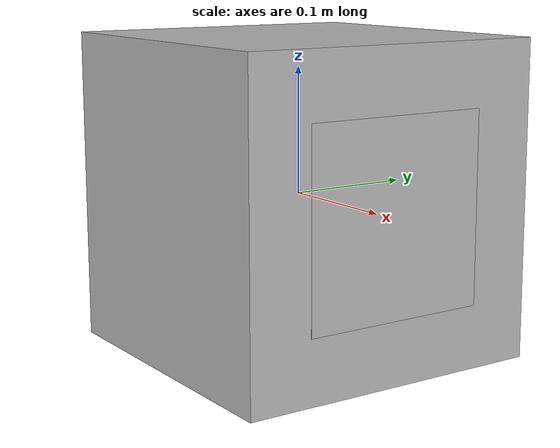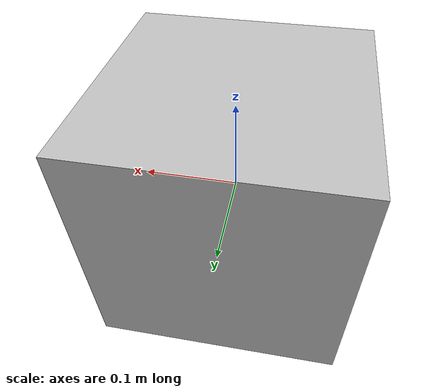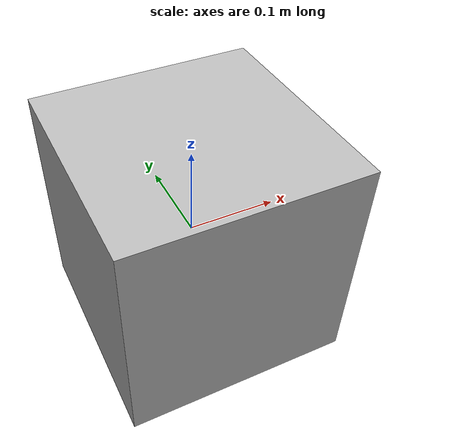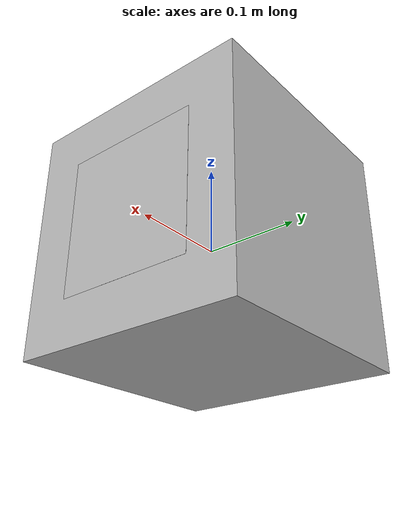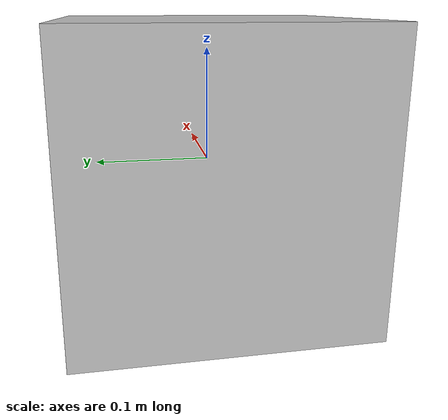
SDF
<?xml version='1.0'?>
<sdf version='1.6'>
<model name="box_model_100">
    <pose>0 0 0 0 0 0</pose>
    <static>false</static>
    <link name="link_100">

      <collision name="collision_100">
        <geometry>
          <box>
            <size>0.25 0.25 0.25</size>
          </box>
        </geometry>
      </collision>

      <visual name="visual_100">
        <geometry>
          <box>
            <size>0.25 0.25 0.25</size>
          </box>
        </geometry>
      </visual>

        <collision name='aruco_collision_100'>
        <pose>0 0 0 0 0 0</pose>
            <geometry>
                <box>
                    <size>0.0001 0.15 0.15</size>
                </box>
            </geometry>
        </collision>
        <visual name='aruco_visual_100'>
        <pose>0.125 0 0 0 0 0</pose>
            <geometry>
                <box>
                    <size>0.0001 0.15 0.15</size>
                </box>
            </geometry>
            <material>
	    <script>
            	<uri>model://aruco_marker_100/materials/scripts</uri>
            	<uri>model://aruco_marker_100/materials/textures</uri>
            	<name>Marker_100</name>
	    </script>
            </material>
        </visual>
    </link>

</model>
</sdf>
